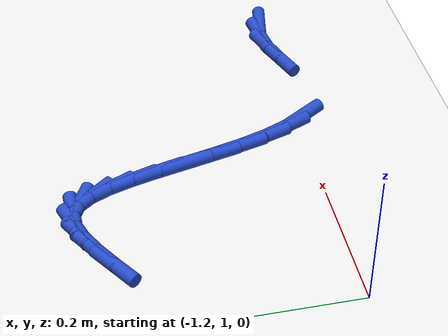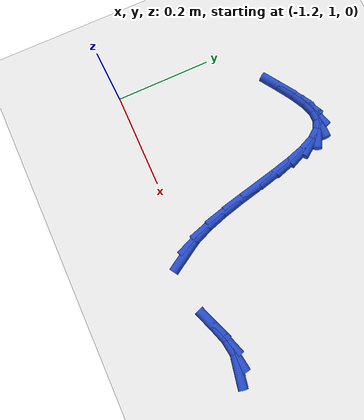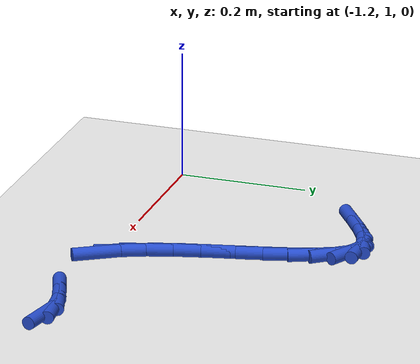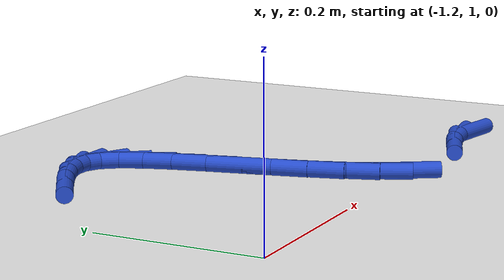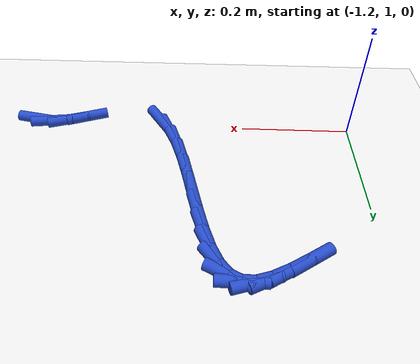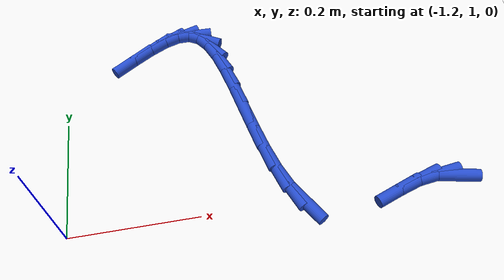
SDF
<sdf version="1.6">
 <world name="default">
  <model name="ground_plane">
   <static>1</static>
   <link name="link">
    <collision name="collision">
     <geometry><plane><normal>0 0 1</normal><size>100 100</size></plane></geometry>
     <surface><friction><ode><mu>100</mu><mu2>50</mu2></ode></friction></surface>
    </collision>
    <visual name="visual">
     <cast_shadows>0</cast_shadows>
     <geometry><plane><normal>0 0 1</normal><size>100 100</size></plane></geometry>
     <material>
      <script><uri>file://media/materials/scripts/gazebo.material</uri><name>Gazebo/WhiteGlow</name></script>
     </material>
    </visual>
   </link>
  </model>
  <model name="line">
   <link name="link_34">
    <pose>-0.6020331174616944 0.9979101789422908 0.01 0 1.57 -0.19283151795735634</pose>
    <collision name="collision">
     <geometry><cylinder><radius>0.01</radius><length>0.08</length></cylinder></geometry>
    </collision>
    <visual name="visual">
     <material>
      <script><name>Gazebo/Blue</name><uri>file://media/materials/scripts/gazebo.material</uri></script>
     </material>
     <geometry><cylinder><radius>0.01</radius><length>0.08</length></cylinder></geometry>
    </visual>
   </link>
   <link name="link_35">
    <pose>-0.629386308785791 1.0032510999578688 0.01 0 1.57 0.13594427644705256</pose>
    <collision name="collision">
     <geometry><cylinder><radius>0.01</radius><length>0.08</length></cylinder></geometry>
    </collision>
    <visual name="visual">
     <material>
      <script><name>Gazebo/Blue</name><uri>file://media/materials/scripts/gazebo.material</uri></script>
     </material>
     <geometry><cylinder><radius>0.01</radius><length>0.08</length></cylinder></geometry>
    </visual>
   </link>
   <link name="link_36">
    <pose>-0.6606825223082821 0.9989701544743113 0.01 0 1.57 0.31854672344433616</pose>
    <collision name="collision">
     <geometry><cylinder><radius>0.01</radius><length>0.08</length></cylinder></geometry>
    </collision>
    <visual name="visual">
     <material>
      <script><name>Gazebo/Blue</name><uri>file://media/materials/scripts/gazebo.material</uri></script>
     </material>
     <geometry><cylinder><radius>0.01</radius><length>0.08</length></cylinder></geometry>
    </visual>
   </link>
   <link name="link_37">
    <pose>-0.6948901320491382 0.9876892610676105 0.01 0 1.57 0.3598006952621342</pose>
    <collision name="collision">
     <geometry><cylinder><radius>0.01</radius><length>0.08</length></cylinder></geometry>
    </collision>
    <visual name="visual">
     <material>
      <script><name>Gazebo/Blue</name><uri>file://media/materials/scripts/gazebo.material</uri></script>
     </material>
     <geometry><cylinder><radius>0.01</radius><length>0.08</length></cylinder></geometry>
    </visual>
   </link>
   <link name="link_42">
    <pose>-0.8413557057962646 0.9933044126880638 0.01 0 1.57 -1.0135000549010977</pose>
    <collision name="collision">
     <geometry><cylinder><radius>0.01</radius><length>0.08</length></cylinder></geometry>
    </collision>
    <visual name="visual">
     <material>
      <script><name>Gazebo/Blue</name><uri>file://media/materials/scripts/gazebo.material</uri></script>
     </material>
     <geometry><cylinder><radius>0.01</radius><length>0.08</length></cylinder></geometry>
    </visual>
   </link>
   <link name="link_43">
    <pose>-0.859215432090175 1.0219629962119348 0.01 0 1.57 -1.169984914363689</pose>
    <collision name="collision">
     <geometry><cylinder><radius>0.01</radius><length>0.08</length></cylinder></geometry>
    </collision>
    <visual name="visual">
     <material>
      <script><name>Gazebo/Blue</name><uri>file://media/materials/scripts/gazebo.material</uri></script>
     </material>
     <geometry><cylinder><radius>0.01</radius><length>0.08</length></cylinder></geometry>
    </visual>
   </link>
   <link name="link_44">
    <pose>-0.8741099416079333 1.0571122809676345 0.01 0 1.57 -1.2642770482631147</pose>
    <collision name="collision">
     <geometry><cylinder><radius>0.01</radius><length>0.08</length></cylinder></geometry>
    </collision>
    <visual name="visual">
     <material>
      <script><name>Gazebo/Blue</name><uri>file://media/materials/scripts/gazebo.material</uri></script>
     </material>
     <geometry><cylinder><radius>0.01</radius><length>0.08</length></cylinder></geometry>
    </visual>
   </link>
   <link name="link_45">
    <pose>-0.8866902941082132 1.0968613978694477 0.01 0 1.57 -1.3191182128599988</pose>
    <collision name="collision">
     <geometry><cylinder><radius>0.01</radius><length>0.08</length></cylinder></geometry>
    </collision>
    <visual name="visual">
     <material>
      <script><name>Gazebo/Blue</name><uri>file://media/materials/scripts/gazebo.material</uri></script>
     </material>
     <geometry><cylinder><radius>0.01</radius><length>0.08</length></cylinder></geometry>
    </visual>
   </link>
   <link name="link_46">
    <pose>-0.8976075493496877 1.1393194778316573 0.01 0 1.57 -1.3457882595074597</pose>
    <collision name="collision">
     <geometry><cylinder><radius>0.01</radius><length>0.08</length></cylinder></geometry>
    </collision>
    <visual name="visual">
     <material>
      <script><name>Gazebo/Blue</name><uri>file://media/materials/scripts/gazebo.material</uri></script>
     </material>
     <geometry><cylinder><radius>0.01</radius><length>0.08</length></cylinder></geometry>
    </visual>
   </link>
   <link name="link_47">
    <pose>-0.907512767091031 1.1825956517685485 0.01 0 1.57 -1.3483888897992953</pose>
    <collision name="collision">
     <geometry><cylinder><radius>0.01</radius><length>0.08</length></cylinder></geometry>
    </collision>
    <visual name="visual">
     <material>
      <script><name>Gazebo/Blue</name><uri>file://media/materials/scripts/gazebo.material</uri></script>
     </material>
     <geometry><cylinder><radius>0.01</radius><length>0.08</length></cylinder></geometry>
    </visual>
   </link>
   <link name="link_48">
    <pose>-0.9170570070909165 1.2247990505944046 0.01 0 1.57 -1.325232907538848</pose>
    <collision name="collision">
     <geometry><cylinder><radius>0.01</radius><length>0.08</length></cylinder></geometry>
    </collision>
    <visual name="visual">
     <material>
      <script><name>Gazebo/Blue</name><uri>file://media/materials/scripts/gazebo.material</uri></script>
     </material>
     <geometry><cylinder><radius>0.01</radius><length>0.08</length></cylinder></geometry>
    </visual>
   </link>
   <link name="link_49">
    <pose>-0.9268913291080181 1.2640388052235099 0.01 0 1.57 -1.267114801058829</pose>
    <collision name="collision">
     <geometry><cylinder><radius>0.01</radius><length>0.08</length></cylinder></geometry>
    </collision>
    <visual name="visual">
     <material>
      <script><name>Gazebo/Blue</name><uri>file://media/materials/scripts/gazebo.material</uri></script>
     </material>
     <geometry><cylinder><radius>0.01</radius><length>0.08</length></cylinder></geometry>
    </visual>
   </link>
   <link name="link_50">
    <pose>-0.937666792901009 1.2984240465701482 0.01 0 1.57 -1.1500586619250919</pose>
    <collision name="collision">
     <geometry><cylinder><radius>0.01</radius><length>0.08</length></cylinder></geometry>
    </collision>
    <visual name="visual">
     <material>
      <script><name>Gazebo/Blue</name><uri>file://media/materials/scripts/gazebo.material</uri></script>
     </material>
     <geometry><cylinder><radius>0.01</radius><length>0.08</length></cylinder></geometry>
    </visual>
   </link>
   <link name="link_51">
    <pose>-0.9500344582285629 1.3260639055486036 0.01 0 1.57 -0.9153413898617649</pose>
    <collision name="collision">
     <geometry><cylinder><radius>0.01</radius><length>0.08</length></cylinder></geometry>
    </collision>
    <visual name="visual">
     <material>
      <script><name>Gazebo/Blue</name><uri>file://media/materials/scripts/gazebo.material</uri></script>
     </material>
     <geometry><cylinder><radius>0.01</radius><length>0.08</length></cylinder></geometry>
    </visual>
   </link>
   <link name="link_52">
    <pose>-0.9646453780004289 1.345067564115056 0.01 0 1.57 -0.480618907367325</pose>
    <collision name="collision">
     <geometry><cylinder><radius>0.01</radius><length>0.08</length></cylinder></geometry>
    </collision>
    <visual name="visual">
     <material>
      <script><name>Gazebo/Blue</name><uri>file://media/materials/scripts/gazebo.material</uri></script>
     </material>
     <geometry><cylinder><radius>0.01</radius><length>0.08</length></cylinder></geometry>
    </visual>
   </link>
   <link name="link_53">
    <pose>-0.9820690211093458 1.3541522124492258 0.01 0 1.57 -0.0001650352604188273</pose>
    <collision name="collision">
     <geometry><cylinder><radius>0.01</radius><length>0.08</length></cylinder></geometry>
    </collision>
    <visual name="visual">
     <material>
      <script><name>Gazebo/Blue</name><uri>file://media/materials/scripts/gazebo.material</uri></script>
     </material>
     <geometry><cylinder><radius>0.01</radius><length>0.08</length></cylinder></geometry>
    </visual>
   </link>
   <link name="link_54">
    <pose>-1.002590314775097 1.3541555991863008 0.01 0 1.57 0.31535034359079633</pose>
    <collision name="collision">
     <geometry><cylinder><radius>0.01</radius><length>0.08</length></cylinder></geometry>
    </collision>
    <visual name="visual">
     <material>
      <script><name>Gazebo/Blue</name><uri>file://media/materials/scripts/gazebo.material</uri></script>
     </material>
     <geometry><cylinder><radius>0.01</radius><length>0.08</length></cylinder></geometry>
    </visual>
   </link>
   <link name="link_55">
    <pose>-1.0264321907989364 1.3463774963536679 0.01 0 1.57 0.48007725752422425</pose>
    <collision name="collision">
     <geometry><cylinder><radius>0.01</radius><length>0.08</length></cylinder></geometry>
    </collision>
    <visual name="visual">
     <material>
      <script><name>Gazebo/Blue</name><uri>file://media/materials/scripts/gazebo.material</uri></script>
     </material>
     <geometry><cylinder><radius>0.01</radius><length>0.08</length></cylinder></geometry>
    </visual>
   </link>
   <link name="link_56">
    <pose>-1.0538175809821186 1.3321176759787123 0.01 0 1.57 0.5579496667024882</pose>
    <collision name="collision">
     <geometry><cylinder><radius>0.01</radius><length>0.08</length></cylinder></geometry>
    </collision>
    <visual name="visual">
     <material>
      <script><name>Gazebo/Blue</name><uri>file://media/materials/scripts/gazebo.material</uri></script>
     </material>
     <geometry><cylinder><radius>0.01</radius><length>0.08</length></cylinder></geometry>
    </visual>
   </link>
   <link name="link_57">
    <pose>-1.0849694171258972 1.3126759100888201 0.01 0 1.57 0.5859600827256446</pose>
    <collision name="collision">
     <geometry><cylinder><radius>0.01</radius><length>0.08</length></cylinder></geometry>
    </collision>
    <visual name="visual">
     <material>
      <script><name>Gazebo/Blue</name><uri>file://media/materials/scripts/gazebo.material</uri></script>
     </material>
     <geometry><cylinder><radius>0.01</radius><length>0.08</length></cylinder></geometry>
    </visual>
   </link>
  </model>
 </world>
</sdf>
